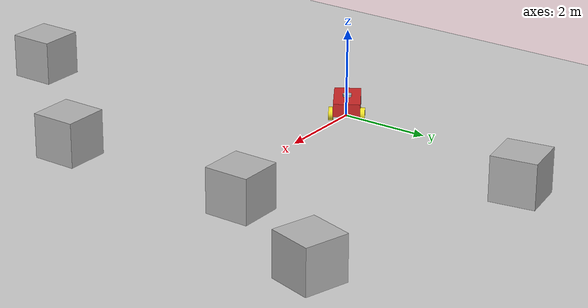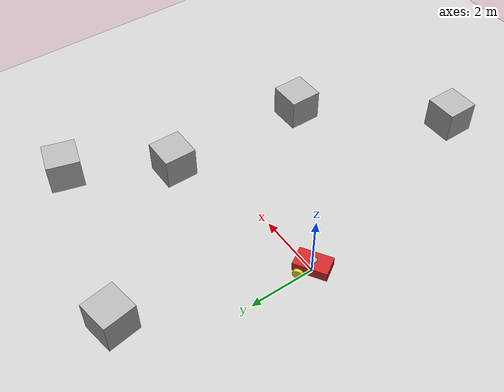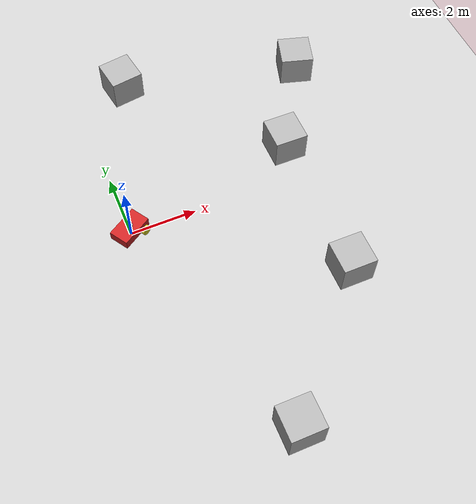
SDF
<sdf version="1.10">
 <world name="empty">
  <model name="ground_plane">
   <static>true</static>
   <link name="link">
    <collision name="collision">
     <geometry><plane><normal>0 0 1</normal><size>100 100</size></plane></geometry>
    </collision>
    <visual name="visual">
     <geometry><plane><normal>0 0 1</normal><size>100 100</size></plane></geometry>
     <material>
      <ambient>0.800000012 0.800000012 0.800000012 1</ambient>
      <diffuse>0.800000012 0.800000012 0.800000012 1</diffuse>
      <specular>0.800000012 0.800000012 0.800000012 1</specular>
     </material>
    </visual>
    <inertial>
     <mass>1</mass>
     <inertia><ixx>1</ixx><ixy>0</ixy><ixz>0</ixz><iyy>1</iyy><iyz>0</iyz><izz>1</izz></inertia>
    </inertial>
   </link>
  </model>
  <model name="differential_drive_robot">
   <link name="base_footprint">
    <inertial>
     <pose>0.021846152061532609 0 0.28907692425434423 0 0 0</pose>
     <mass>526.11172336674997</mass>
     <inertia>
      <ixx>19.436548001887321</ixx>
      <ixy>0</ixy>
      <ixz>1.598482952896185</ixz>
      <iyy>48.649513901125843</iyy>
      <iyz>0</iyz>
      <izz>58.825772400539257</izz>
     </inertia>
    </inertial>
    <collision name="base_footprint_fixed_joint_lump__body_link_collision">
     <pose>0 0 0.29999999999999999 0 0 0</pose>
     <geometry><box><size>1 0.59999999999999998 0.29999999999999999</size></box></geometry>
     <surface><friction><ode><mu>0.20000000000000001</mu><mu2>0.20000000000000001</mu2></ode></friction></surface>
    </collision>
    <collision name="base_footprint_fixed_joint_lump__caster_link_collision_1">
     <pose>0.29999999999999999 0 0.14999999999999999 0 0 0</pose>
     <geometry><sphere><radius>0.14999999999999999</radius></sphere></geometry>
     <surface>
      <friction><ode><mu>1.9999999999999999e-06</mu><mu2>1.9999999999999999e-06</mu2></ode></friction>
     </surface>
    </collision>
    <collision name="base_footprint_fixed_joint_lump__lidar_link_collision_2">
     <pose>0 0 0.49999999999999989 0 0 0</pose>
     <geometry>
      <cylinder><length>0.10000000000000001</length><radius>0.10000000000000001</radius></cylinder>
     </geometry>
    </collision>
    <visual name="base_footprint_fixed_joint_lump__body_link_visual">
     <pose>0 0 0.29999999999999999 0 0 0</pose>
     <geometry><box><size>1 0.59999999999999998 0.29999999999999999</size></box></geometry>
     <material>
      <script><name>Gazebo/Red</name><uri>file://media/materials/scripts/gazebo.material</uri></script>
     </material>
    </visual>
    <visual name="base_footprint_fixed_joint_lump__caster_link_visual_1">
     <pose>0.29999999999999999 0 0.14999999999999999 0 0 0</pose>
     <geometry><sphere><radius>0.14999999999999999</radius></sphere></geometry>
     <material>
      <script><name>Gazebo/Blue</name><uri>file://media/materials/scripts/gazebo.material</uri></script>
     </material>
    </visual>
    <visual name="base_footprint_fixed_joint_lump__lidar_link_visual_2">
     <pose>0 0 0.45000000000000001 0 0 0.049999999999999982</pose>
     <geometry>
      <cylinder><length>0.10000000000000001</length><radius>0.10000000000000001</radius></cylinder>
     </geometry>
    </visual>
    <sensor name="gpu_lidar" type="gpu_lidar">
     <pose>0 0 0.45000000000000001 0 0 0</pose>
     <topic>scan</topic>
     <update_rate>1</update_rate>
     <enable_metrics>false</enable_metrics>
     <lidar>
      <scan>
       <horizontal>
        <samples>720</samples>
        <resolution>1</resolution>
        <min_angle>-3.1400000000000001</min_angle>
        <max_angle>3.1400000000000001</max_angle>
       </horizontal>
       <vertical>
        <samples>1</samples>
        <min_angle>0</min_angle>
        <max_angle>0</max_angle>
        <resolution>1</resolution>
       </vertical>
      </scan>
      <range><min>0.01</min><max>12</max><resolution>0.0050000000000000001</resolution></range>
      <noise><type>gaussian</type><mean>0</mean><stddev>0.001</stddev></noise>
      <visibility_mask>4294967295</visibility_mask>
     </lidar>
    </sensor>
   </link>
   <joint name="wheel1_joint" type="revolute">
    <parent>base_footprint</parent>
    <child>wheel1_link</child>
    <axis>
     <xyz>0 1 0</xyz>
     <limit>
      <lower>-inf</lower>
      <upper>inf</upper>
      <effort>50000</effort>
      <velocity>10</velocity>
      <stiffness>100000000</stiffness>
      <dissipation>1</dissipation>
     </limit>
     <dynamics>
      <spring_reference>0</spring_reference>
      <spring_stiffness>0</spring_stiffness>
      <damping>1</damping>
      <friction>1</friction>
     </dynamics>
    </axis>
   </joint>
   <link name="wheel1_link">
    <pose>-0.29999999999999999 -0.34999999999999992 0.14999999999999999 3.1415926535897931 -0.925565301556873 -3.1415926535897931</pose>
    <inertial>
     <pose>0 0 0 1.5707949999999999 0 0</pose>
     <mass>19.155861183374999</mass>
     <inertia>
      <ixx>0.12371493680929679</ixx>
      <ixy>0</ixy>
      <ixz>0</ixz>
      <iyy>0.12371493680929679</iyy>
      <iyz>0</iyz>
      <izz>0.21550343831296881</izz>
     </inertia>
    </inertial>
    <collision name="wheel1_link_collision">
     <pose>0 0 0 1.5707949999999999 0 0</pose>
     <geometry>
      <cylinder><length>0.10000000000000001</length><radius>0.14999999999999999</radius></cylinder>
     </geometry>
     <surface><friction><ode><mu>0.20000000000000001</mu><mu2>0.20000000000000001</mu2></ode></friction></surface>
    </collision>
    <visual name="wheel1_link_visual">
     <pose>0 0 0 1.5707949999999999 0 0</pose>
     <geometry>
      <cylinder><length>0.10000000000000001</length><radius>0.14999999999999999</radius></cylinder>
     </geometry>
     <material>
      <script><name>Gazebo/Yellow</name><uri>file://media/materials/scripts/gazebo.material</uri></script>
     </material>
    </visual>
   </link>
   <joint name="wheel2_joint" type="revolute">
    <parent>base_footprint</parent>
    <child>wheel2_link</child>
    <axis>
     <xyz>0 1 0</xyz>
     <limit>
      <lower>-inf</lower>
      <upper>inf</upper>
      <effort>50000</effort>
      <velocity>10</velocity>
      <stiffness>100000000</stiffness>
      <dissipation>1</dissipation>
     </limit>
     <dynamics>
      <spring_reference>0</spring_reference>
      <spring_stiffness>0</spring_stiffness>
      <damping>1</damping>
      <friction>1</friction>
     </dynamics>
    </axis>
   </joint>
   <link name="wheel2_link">
    <pose>-0.29999999999999988 0.34999999999999987 0.14999999999999997 1.1346097363037365e-16 1.275263489700881 1.531457542216827e-16</pose>
    <inertial>
     <pose>0 0 0 1.5707949999999999 0 0</pose>
     <mass>19.155861183374999</mass>
     <inertia>
      <ixx>0.12371493680929679</ixx>
      <ixy>0</ixy>
      <ixz>0</ixz>
      <iyy>0.12371493680929679</iyy>
      <iyz>0</iyz>
      <izz>0.21550343831296881</izz>
     </inertia>
    </inertial>
    <collision name="wheel2_link_collision">
     <pose>0 0 0 1.5707949999999999 0 0</pose>
     <geometry>
      <cylinder><length>0.10000000000000001</length><radius>0.14999999999999999</radius></cylinder>
     </geometry>
     <surface><friction><ode><mu>0.20000000000000001</mu><mu2>0.20000000000000001</mu2></ode></friction></surface>
    </collision>
    <visual name="wheel2_link_visual">
     <pose>0 0 0 1.5707949999999999 0 0</pose>
     <geometry>
      <cylinder><length>0.10000000000000001</length><radius>0.14999999999999999</radius></cylinder>
     </geometry>
     <material>
      <script><name>Gazebo/Yellow</name><uri>file://media/materials/scripts/gazebo.material</uri></script>
     </material>
    </visual>
   </link>
   <plugin name="gz::sim::systems::DiffDrive" filename="gz-sim-diff-drive-system">
    <right_joint>wheel1_joint</right_joint>
    <left_joint>wheel2_joint</left_joint>
    <wheel_separation>0.7</wheel_separation>
    <wheel_diameter>0.3</wheel_diameter>
    <max_linear_acceleration>10</max_linear_acceleration>
    <topic>cmd_vel</topic>
    <tf_topic>/tf</tf_topic>
    <odom_topic>odom</odom_topic>
    <frame_id>odom</frame_id>
    <child_frame_id>base_footprint</child_frame_id>
    <odom_publisher_frequency>30</odom_publisher_frequency>
   </plugin>
   <plugin name="gz::sim::systems::JointStatePublisher" filename="gz-sim-joint-state-publisher-system">
    <topic>loint_states</topic>
    <joint_name>wheel1_joint</joint_name>
    <joint_name>wheel2_joint</joint_name>
   </plugin>
   <plugin name="gz::sim::systems::Sensors" filename="gz-sim-sensors-system">
    <render_engine>ogre2</render_engine>
   </plugin>
   <plugin name="gz::sim::systems::OdometryPublisher" filename="gz-sim-odometry-publisher-system">
    <odom_frame>odom</odom_frame>
    <robot_base_frame>base_link</robot_base_frame>
    <odom_publish_frequency>50</odom_publish_frequency>
    <odom_topic>odom1</odom_topic>
    <odom_covariance_topic>odom1_with_covariance</odom_covariance_topic>
    <tf_topic>odom1_tf</tf_topic>
   </plugin>
   <frame name="caster_joint" attached_to="body_link">
    <pose>0.29999999999999999 0 0.14999999999999999 0 0 0</pose>
   </frame>
   <frame name="caster_link" attached_to="caster_joint"/>
   <frame name="lidar_joint" attached_to="body_link"><pose>0 0 0.45000000000000001 0 0 0</pose></frame>
   <frame name="lidar_link" attached_to="lidar_joint"/>
   <frame name="body_link_joint" attached_to="base_footprint"/>
   <frame name="body_link" attached_to="body_link_joint"/>
   <pose>-0.018510696080868624 -0.00036836012029159264 3.6289658725972079e-09 -2.4731896770837919e-08 4.6963813216683296e-08 -2.5771994872572437</pose>
   <static>false</static>
  </model>
  <model name="box">
   <pose>1.5279199999999999 5.2429199999999998 0.49999900000000003 -4.1933000000000004e-10 -8.3716700000000009e-10 -1.4128400000000003</pose>
   <link name="box_link">
    <inertial>
     <inertia><ixx>0.16666</ixx><ixy>0</ixy><ixz>0</ixz><iyy>0.16666</iyy><iyz>0</iyz><izz>0.16666</izz></inertia>
     <mass>1</mass>
    </inertial>
    <collision name="box_collision"><geometry><box><size>1 1 1</size></box></geometry></collision>
    <visual name="box_visual">
     <geometry><box><size>1 1 1</size></box></geometry>
     <material>
      <ambient>0.300000012 0.300000012 0.300000012 1</ambient>
      <diffuse>0.699999988 0.699999988 0.699999988 1</diffuse>
      <specular>1 1 1 1</specular>
     </material>
    </visual>
   </link>
   <static>false</static>
  </model>
  <model name="box_0">
   <pose>5.3765599999999996 1.1077300000000001 0.5 6.2287699999999997e-22 9.3279700000000006e-22 -3.63155e-22</pose>
   <link name="box_link">
    <inertial>
     <inertia><ixx>0.16666</ixx><ixy>0</ixy><ixz>0</ixz><iyy>0.16666</iyy><iyz>0</iyz><izz>0.16666</izz></inertia>
     <mass>1</mass>
    </inertial>
    <collision name="box_collision"><geometry><box><size>1 1 1</size></box></geometry></collision>
    <visual name="box_visual">
     <geometry><box><size>1 1 1</size></box></geometry>
     <material>
      <ambient>0.300000012 0.300000012 0.300000012 1</ambient>
      <diffuse>0.699999988 0.699999988 0.699999988 1</diffuse>
      <specular>1 1 1 1</specular>
     </material>
    </visual>
   </link>
   <static>false</static>
  </model>
  <model name="box_3">
   <pose>5.2959500000000004 -3.4748199999999998 0.5 6.2287699999999997e-22 9.3279700000000006e-22 -3.63155e-22</pose>
   <link name="box_link">
    <inertial>
     <inertia><ixx>0.16666</ixx><ixy>0</ixy><ixz>0</ixz><iyy>0.16666</iyy><iyz>0</iyz><izz>0.16666</izz></inertia>
     <mass>1</mass>
    </inertial>
    <collision name="box_collision"><geometry><box><size>1 1 1</size></box></geometry></collision>
    <visual name="box_visual">
     <geometry><box><size>1 1 1</size></box></geometry>
     <material>
      <ambient>0.300000012 0.300000012 0.300000012 1</ambient>
      <diffuse>0.699999988 0.699999988 0.699999988 1</diffuse>
      <specular>1 1 1 1</specular>
     </material>
    </visual>
   </link>
   <static>false</static>
  </model>
  <model name="box_4">
   <pose>2.0135200000000002 -7.0934999999999997 0.5 6.2287699999999997e-22 9.3279700000000006e-22 -3.63155e-22</pose>
   <link name="box_link">
    <inertial>
     <inertia><ixx>0.16666</ixx><ixy>0</ixy><ixz>0</ixz><iyy>0.16666</iyy><iyz>0</iyz><izz>0.16666</izz></inertia>
     <mass>1</mass>
    </inertial>
    <collision name="box_collision"><geometry><box><size>1 1 1</size></box></geometry></collision>
    <visual name="box_visual">
     <geometry><box><size>1 1 1</size></box></geometry>
     <material>
      <ambient>0.300000012 0.300000012 0.300000012 1</ambient>
      <diffuse>0.699999988 0.699999988 0.699999988 1</diffuse>
      <specular>1 1 1 1</specular>
     </material>
    </visual>
   </link>
   <static>false</static>
  </model>
  <model name="box_6">
   <pose>7.0277399999999997 3.9270700000000001 0.5 4.0530800000000007e-07 -9.7389000000007014e-10 1.2911700000000004</pose>
   <link name="box_link">
    <inertial>
     <inertia><ixx>0.16666</ixx><ixy>0</ixy><ixz>0</ixz><iyy>0.16666</iyy><iyz>0</iyz><izz>0.16666</izz></inertia>
     <mass>1</mass>
    </inertial>
    <collision name="box_collision"><geometry><box><size>1 1 1</size></box></geometry></collision>
    <visual name="box_visual">
     <geometry><box><size>1 1 1</size></box></geometry>
     <material>
      <ambient>0.300000012 0.300000012 0.300000012 1</ambient>
      <diffuse>0.699999988 0.699999988 0.699999988 1</diffuse>
      <specular>1 1 1 1</specular>
     </material>
    </visual>
   </link>
   <static>false</static>
  </model>
 </world>
</sdf>
